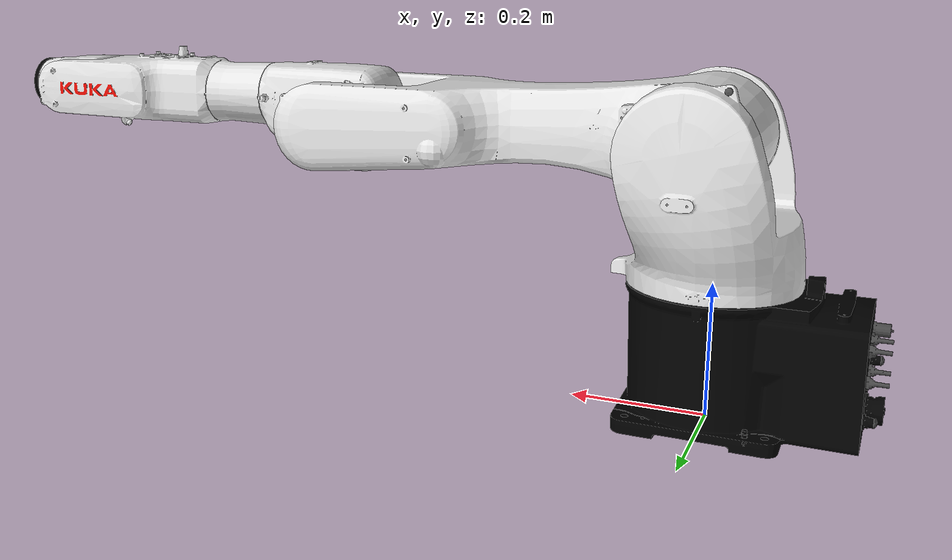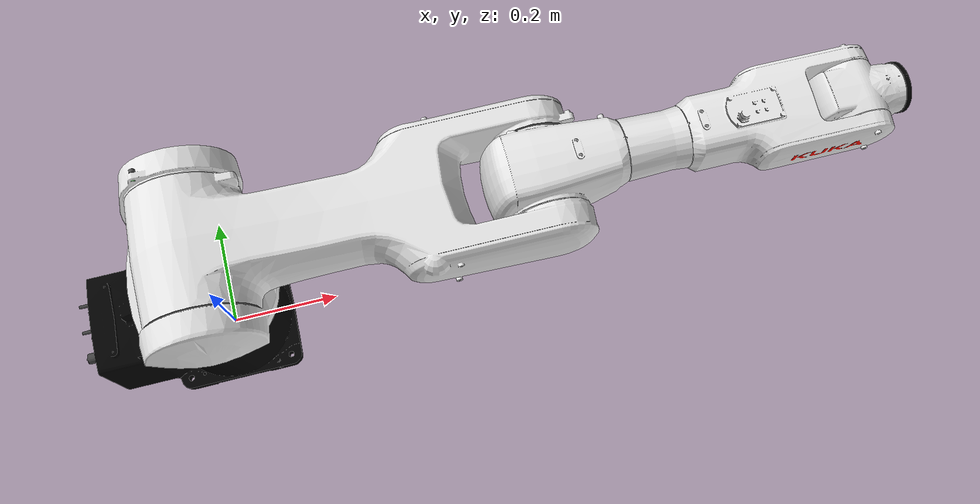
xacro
<?xml version="1.0" encoding="UTF-8"?>
<robot xmlns:xacro="http://www.ros.org/wiki/xacro" name="kr10_r1100_3">
  <!-- Import urdf files  -->
  <xacro:include filename="$(find kuka_agilus_support)/urdf/kr10_r1100_3_macro.xacro"/>
  <xacro:include filename="$(find kuka_agilus_support)/urdf/kr_agilus_ros2_control_macro.xacro"/>
  <!-- Basic arguments  -->
  <xacro:arg name="prefix" default=""/>
  <xacro:arg name="x" default="0"/>
  <xacro:arg name="y" default="0"/>
  <xacro:arg name="z" default="0"/>
  <xacro:arg name="roll" default="0"/>
  <xacro:arg name="pitch" default="0"/>
  <xacro:arg name="yaw" default="0"/>
  <xacro:arg name="rsi_xml_config_file" default=""/>
  <!-- kroshu-specific arguments -->
  <xacro:arg name="driver_version" default="rsi_only"/>
  <xacro:arg name="mode" default="hardware"/>
  <xacro:arg name="gpio_config" default=""/>
  <xacro:arg name="roundtrip_time" default="0"/>
  <xacro:arg name="client_ip" default="0.0.0.0"/>
  <xacro:arg name="client_port" default="59152"/>
  <xacro:arg name="mxa_client_port" default="1337"/>
  <xacro:arg name="controller_ip" default="0.0.0.0"/>
  <xacro:arg name="verify_robot_model" default="true"/>
  <xacro:kuka_agilus_ros2_control name="$(arg prefix)kr10_r1100_3" driver_version="$(arg driver_version)" client_ip="$(arg client_ip)" client_port="$(arg client_port)" mxa_client_port="$(arg mxa_client_port)" controller_ip="$(arg controller_ip)" prefix="$(arg prefix)" mode="$(arg mode)" gpio_config="$(arg gpio_config)" roundtrip_time="$(arg roundtrip_time)" verify_robot_model="$(arg verify_robot_model)" rsi_xml_config_file="$(arg rsi_xml_config_file)">
    <ext_axes_ros2_control_joints/>
  </xacro:kuka_agilus_ros2_control>
  <!-- world link -->
  <link name="world"/>
  <!-- robot links, joints -->
  <xacro:kuka_kr10_r1100_3_robot prefix="$(arg prefix)" package_name="kuka_agilus_support"/>
  <!-- default world - base_link joint -->
  <joint name="$(arg prefix)world-base_link" type="fixed">
    <parent link="world"/>
    <child link="$(arg prefix)base_link"/>
    <origin xyz="$(arg x) $(arg y) $(arg z)" rpy="$(arg roll) $(arg pitch) $(arg yaw)"/>
  </joint>
</robot>

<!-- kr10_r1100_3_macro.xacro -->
<robot xmlns:xacro="http://www.ros.org/wiki/xacro" name="kr10_r1100_3">
  <xacro:macro name="kuka_kr10_r1100_3_robot" params="prefix package_name">
    <link name="${prefix}base"/>
    <link name="${prefix}base_link">
      <collision>
        <geometry>
          <mesh filename="package://${package_name}/meshes/kr10_r1100_3/collision/base_link.stl"/>
        </geometry>
        <origin rpy="0.0 0.0 0.0" xyz="0.0 0.0 0.0"/>
      </collision>
      <inertial>
        <inertia ixx="0.0948" ixy="0.0" ixz="0.0" iyy="0.0723" iyz="0.0" izz="0.1001"/>
        <mass value="11.758"/>
        <origin rpy="1.5729 -1.0902 -3.1404" xyz="-0.0223 0.0002 0.1072"/>
      </inertial>
      <visual>
        <geometry>
          <mesh filename="package://${package_name}/meshes/kr10_r1100_3/visual/base_link.dae"/>
        </geometry>
        <origin rpy="0.0 0.0 0.0" xyz="0.0 0.0 0.0"/>
      </visual>
    </link>
    <link name="${prefix}flange"/>
    <link name="${prefix}link_1">
      <collision>
        <geometry>
          <mesh filename="package://${package_name}/meshes/kr10_r1100_3/collision/link_1.stl"/>
        </geometry>
        <origin rpy="-3.1415853071795867 0.0 -0.0" xyz="0.0 -1.4854441437833335e-06 0.20219999999454366"/>
      </collision>
      <inertial>
        <inertia ixx="0.127" ixy="0.0" ixz="0.0" iyy="0.1523" iyz="0.0" izz="0.1939"/>
        <mass value="11.761"/>
        <origin rpy="1.4733 0.0903 -1.5757" xyz="0.0045 -0.0207 -0.0985"/>
      </inertial>
      <visual>
        <geometry>
          <mesh filename="package://${package_name}/meshes/kr10_r1100_3/visual/link_1.dae"/>
        </geometry>
        <origin rpy="-3.1415853071795867 0.0 -0.0" xyz="0.0 -1.4854441437833335e-06 0.20219999999454366"/>
      </visual>
    </link>
    <link name="${prefix}link_2">
      <collision>
        <geometry>
          <mesh filename="package://${package_name}/meshes/kr10_r1100_3/collision/link_2.stl"/>
        </geometry>
        <origin rpy="1.5708 4.70197740325743e-38 1.5707963267948966" xyz="-0.3999995900676121 -0.024999999999999977 -0.11159998383714469"/>
      </collision>
      <inertial>
        <inertia ixx="1.0411" ixy="0.0" ixz="0.0" iyy="0.1576" iyz="0.0" izz="1.1398"/>
        <mass value="20.669"/>
        <origin rpy="-1.781 -1.4991 -2.9367" xyz="0.1758 -0.0045 -0.0917"/>
      </inertial>
      <visual>
        <geometry>
          <mesh filename="package://${package_name}/meshes/kr10_r1100_3/visual/link_2.dae"/>
        </geometry>
        <origin rpy="1.5708 4.70197740325743e-38 1.5707963267948966" xyz="-0.3999995900676121 -0.024999999999999977 -0.11159998383714469"/>
      </visual>
    </link>
    <link name="${prefix}link_3">
      <collision>
        <geometry>
          <mesh filename="package://${package_name}/meshes/kr10_r1100_3/collision/link_3.stl"/>
        </geometry>
        <origin rpy="1.5708 -0.0 -0.0" xyz="-0.025000000000000036 0.959999590067612 -0.06709998383714467"/>
      </collision>
      <inertial>
        <inertia ixx="0.0249" ixy="0.0" ixz="0.0" iyy="0.0156" iyz="0.0" izz="0.0265"/>
        <mass value="5.505"/>
        <origin rpy="-2.9763 -0.3903 1.5284" xyz="0.0324 -0.0082 -0.0546"/>
      </inertial>
      <visual>
        <geometry>
          <mesh filename="package://${package_name}/meshes/kr10_r1100_3/visual/link_3.dae"/>
        </geometry>
        <origin rpy="1.5708 -0.0 -0.0" xyz="-0.025000000000000036 0.959999590067612 -0.06709998383714467"/>
      </visual>
    </link>
    <link name="${prefix}link_4">
      <collision>
        <geometry>
          <mesh filename="package://${package_name}/meshes/kr10_r1100_3/collision/link_4.stl"/>
        </geometry>
        <origin rpy="-2.3561908169838683 1.570791132121014 -2.356194490195718" xyz="-0.9949990078578907 5.983792891680419e-07 0.15850365483537415"/>
      </collision>
      <inertial>
        <inertia ixx="0.0129" ixy="0.0" ixz="0.0" iyy="0.0937" iyz="0.0" izz="0.0975"/>
        <mass value="5.057"/>
        <origin rpy="1.6617 -1.551 -1.6782" xyz="-0.0003 0.0055 -0.2138"/>
      </inertial>
      <visual>
        <geometry>
          <mesh filename="package://${package_name}/meshes/kr10_r1100_3/visual/link_4.dae"/>
        </geometry>
        <origin rpy="-2.3561908169838683 1.570791132121014 -2.356194490195718" xyz="-0.9949990078578907 5.983792891680419e-07 0.15850365483537415"/>
      </visual>
    </link>
    <link name="${prefix}link_5">
      <collision>
        <geometry>
          <mesh filename="package://${package_name}/meshes/kr10_r1100_3/collision/link_5.stl"/>
        </geometry>
        <origin rpy="1.5708036732051034 -1.3492460511333464e-11 3.673218595765785e-06" xyz="-0.5400034759622656 0.9949991867340687 -0.048697730328801064"/>
      </collision>
      <inertial>
        <inertia ixx="0.0045" ixy="0.0" ixz="0.0" iyy="0.0025" iyz="0.0" izz="0.0048"/>
        <mass value="2.141"/>
        <origin rpy="1.7635 -1.4144 -0.1974" xyz="0.0099 -0.0006 -0.034"/>
      </inertial>
      <visual>
        <geometry>
          <mesh filename="package://${package_name}/meshes/kr10_r1100_3/visual/link_5.dae"/>
        </geometry>
        <origin rpy="1.5708036732051034 -1.3492460511333464e-11 3.673218595765785e-06" xyz="-0.5400034759622656 0.9949991867340687 -0.048697730328801064"/>
      </visual>
    </link>
    <link name="${prefix}link_6">
      <collision>
        <geometry>
          <mesh filename="package://${package_name}/meshes/kr10_r1100_3/collision/link_6.stl"/>
        </geometry>
        <origin rpy="-2.6779399020961754 1.5707881132943111 -2.6779472485198745" xyz="-0.9949969761797574 4.480232222974986e-06 0.6018071307818995"/>
      </collision>
      <inertial>
        <inertia ixx="0.0002" ixy="0.0" ixz="0.0" iyy="0.0002" iyz="0.0" izz="0.0003"/>
        <mass value="0.4437"/>
        <origin rpy="0.0 0.0 -1.9907" xyz="0.0 0.0 -0.0117"/>
      </inertial>
      <visual>
        <geometry>
          <mesh filename="package://${package_name}/meshes/kr10_r1100_3/visual/link_6.dae"/>
        </geometry>
        <origin rpy="-2.6779399020961754 1.5707881132943111 -2.6779472485198745" xyz="-0.9949969761797574 4.480232222974986e-06 0.6018071307818995"/>
      </visual>
    </link>
    <link name="${prefix}tool0"/>
    <joint name="${prefix}base_link-base" type="fixed">
      <child link="${prefix}base"/>
      <origin rpy="0.0 0.0 0.0" xyz="0.0 0.0 0.0"/>
      <parent link="${prefix}base_link"/>
    </joint>
    <joint name="${prefix}joint_1" type="revolute">
      <axis xyz="0.0 0.0 1.0"/>
      <child link="${prefix}link_1"/>
      <limit effort="288.36" lower="-2.9671" upper="2.9671" velocity="5.236"/>
      <origin rpy="-3.1416 0.0 0.0" xyz="0.0 0.0 0.2022"/>
      <parent link="${prefix}base_link"/>
    </joint>
    <joint name="${prefix}joint_2" type="revolute">
      <axis xyz="0.0 0.0 1.0"/>
      <child link="${prefix}link_2"/>
      <limit effort="300.9283" lower="-3.3161" upper="0.7854" velocity="4.0143"/>
      <origin rpy="1.5708 0.0 0.0" xyz="0.025 -0.1116 -0.1978"/>
      <parent link="${prefix}link_1"/>
    </joint>
    <joint name="${prefix}joint_3" type="revolute">
      <axis xyz="0.0 0.0 1.0"/>
      <child link="${prefix}link_3"/>
      <limit effort="116.6425" lower="-2.0944" upper="2.7576" velocity="5.7596"/>
      <origin rpy="0.0 0.0 0.0" xyz="0.56 0.0 -0.0445"/>
      <parent link="${prefix}link_2"/>
    </joint>
    <joint name="${prefix}joint_4" type="revolute">
      <axis xyz="0.0 0.0 1.0"/>
      <child link="${prefix}link_4"/>
      <limit effort="48.2566" lower="-3.4907" upper="3.4907" velocity="8.3776"/>
      <origin rpy="1.5708 0.0 -1.5708" xyz="0.1335 -0.035 -0.0671"/>
      <parent link="${prefix}link_3"/>
    </joint>
    <joint name="${prefix}joint_5" type="revolute">
      <axis xyz="0.0 0.0 1.0"/>
      <child link="${prefix}link_5"/>
      <limit effort="28.9954" lower="-2.0944" upper="2.0944" velocity="6.9813"/>
      <origin rpy="0.0 1.5708 1.5708" xyz="0.0 0.0487 -0.3815"/>
      <parent link="${prefix}link_4"/>
    </joint>
    <joint name="${prefix}joint_6" type="revolute">
      <axis xyz="0.0 0.0 1.0"/>
      <child link="${prefix}link_6"/>
      <limit effort="23.0425" lower="-6.1959" upper="6.1959" velocity="10.472"/>
      <origin rpy="1.5708 0.0 -1.5708" xyz="0.0618 0.0 -0.0487"/>
      <parent link="${prefix}link_5"/>
    </joint>
    <joint name="${prefix}link_6-flange" type="fixed">
      <child link="${prefix}flange"/>
      <origin rpy="0.0 1.5708 0.0" xyz="0.0 0.0 -0.0282"/>
      <parent link="${prefix}link_6"/>
    </joint>
    <joint name="${prefix}link_6-tool0" type="fixed">
      <child link="${prefix}tool0"/>
      <origin rpy="3.1416 -0.0 3.1416" xyz="0.0 0.0 -0.0282"/>
      <parent link="${prefix}link_6"/>
    </joint>
  </xacro:macro>
</robot>
